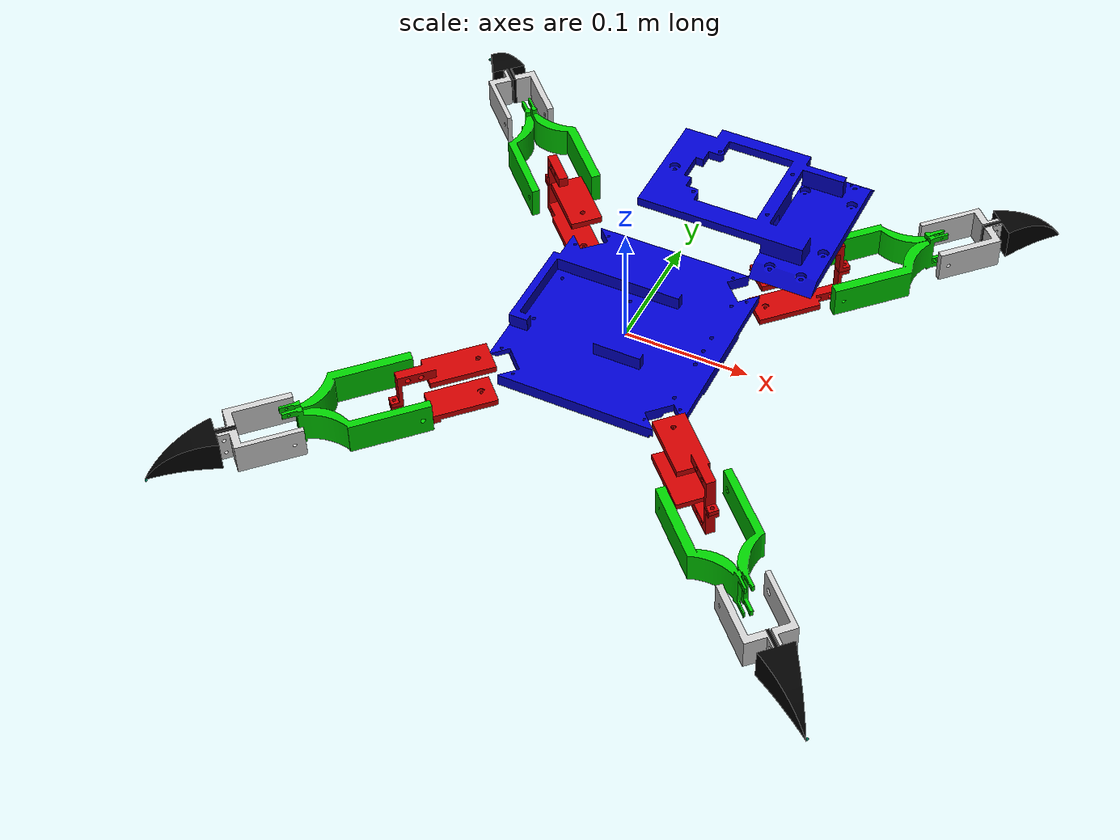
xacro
<?xml version="1.0"?>
<robot xmlns:xacro="http://www.ros.org/wiki/xacro" name="spider">
  <!--  Arguments  -->
  <xacro:arg name="use_mock_hardware" default="false"/>

  <!--  Include Xacro files  -->
	<xacro:include filename="$(find spider_capstone_description)/ros2_control/spider.ros2_control.xacro"/>
  <xacro:spider_ros2_control use_mock_hardware="$(arg use_mock_hardware)"/>

	<!--  Colors  -->
	<material name="blue">
		<color rgba="0 0 0.8 1"/>
	</material>
	<material name="green">
		<color rgba="0 0.8 0 1"/>
	</material>
	<material name="red">
		<color rgba="0.8 0 0 1"/>
	</material>
	<material name="white">
		<color rgba="0.8 0.8 0.8 1"/>
	</material>
        <material name="black">
          <color rgba="0 0 0 1"/>
        </material>

	<!--  Macro Properties  -->
	<xacro:property name="mesh_dir" value="package://spider_capstone_description/meshes/V1"/>
	<xacro:property name="mesh_scale" value="0.001"/>
	<xacro:property name="scale3" value="${mesh_scale} ${mesh_scale} ${mesh_scale}"/>

        <xacro:macro name="MG90S" params="prefix">
          <link name="${prefix}_MG90S">
            <visual>
              <geometry>
                <mesh filename="${mesh_dir}/MG90SSeat.stl"/>
              </geometry>
            </visual>
          </link>
        </xacro:macro>
        <xacro:macro name="MG996R" params="prefix">
          <link name="${prefix}_MG996R">
            <visual>
              <geometry>
                <mesh filename="${mesh_dir}/MG996RSeat.stl"/>
              </geometry>
            </visual>
          </link>
        </xacro:macro>

	<!--  Define base  -->
	<link name="base_link"/>

	<joint name="base_link_to_BaseLowerPlate" type="fixed">
		<parent link="base_link"/>
		<child link="BaseLowerPlate"/>
		<origin xyz="0 0 0" rpy="0 0 0"/>
	</joint>

	<link name="BaseLowerPlate">
		<visual>
			<geometry>
				<mesh filename="${mesh_dir}/BaseLowerPlate.stl" scale="${scale3}"/>
			</geometry>
			<material name="blue"/>
			<origin xyz="-0.0795 0.0877 0.021" rpy="${pi} 0 0"/>
		</visual>
	</link>

	<joint name="BaseLowerPlate_to_BaseUpperPlate" type="fixed">
		<parent link="BaseLowerPlate"/>
		<child link="BaseUpperPlate"/>
		<origin xyz="0 0 0.1" rpy="0 0 0"/>
	</joint>

	<link name="BaseUpperPlate">
		<visual>
			<geometry>
				<mesh filename="${mesh_dir}/BaseUpperPlate.stl" scale="${scale3}"/>
			</geometry>
			<material name="blue"/>
			<origin xyz="0 0 0" rpy="0 0 0"/>
		</visual>
	</link>

        <!--  Define leg macro  -->
        <xacro:macro name="leg" params="prefix *sh_orig">
          <joint name="${prefix}_hip" type="revolute">
            <!--  BaseLowerPlate_to_Link1Upper  -->
            <parent link="BaseLowerPlate"/>
            <child link="${prefix}_Link1Upper"/>
            <xacro:insert_block name="sh_orig"/>
            <limit upper="${pi/2}" lower="${-pi/2}" effort="1000" velocity="0.5"/>
            <axis xyz="0 0 1"/>
          </joint>

          <link name="${prefix}_Link1Upper">
                  <visual>
                          <geometry>
                                  <mesh filename="${mesh_dir}/Link1Upper.stl" scale="${scale3}"/>
                          </geometry>
                          <material name="red"/>
                          <origin xyz="-0.0106 0.0127 0" rpy="0 0 ${-pi/2}"/>
                  </visual>
          </link>

          <joint name="${prefix}_Link1Upper_to_Link1Lower" type="fixed">
            <parent link="${prefix}_Link1Upper"/>
            <child link="${prefix}_Link1Lower"/>
            <origin xyz="0 0 0" rpy="0 0 0"/>
          </joint>

          <link name="${prefix}_Link1Lower">
                  <visual>
                          <geometry>
                                  <mesh filename="${mesh_dir}/Link1Lower.stl" scale="${scale3}"/>
                          </geometry>
                          <material name="red"/>
                          <origin xyz="-0.0106 0.0127 -0.02794" rpy="0 0 ${-pi/2}"/>
                  </visual>
          </link>

          <joint name="${prefix}_knee" type="revolute">
            <!--  Link1Lower_to_Link2Left  -->
            <parent link="${prefix}_Link1Lower"/>
            <child link="${prefix}_Link2Left"/>
            <origin xyz="0.05123 0 0" rpy="0 0 0"/>
            <axis xyz="0 1 0"/>
            <limit upper="${pi/2}" lower="${-pi/2}" effort="1000" velocity="0.5"/>
          </joint>

          <link name="${prefix}_Link2Left">
                  <visual>
                          <geometry>
                                  <mesh filename="${mesh_dir}/Link2Left.stl" scale="${scale3}"/>
                          </geometry>
                          <material name="green"/>
                          <origin xyz="-0.0331 0.0283 -0.016" rpy="0 0 ${-pi/2}"/>
                  </visual>
          </link>

          <joint name="${prefix}_Link2Left_to_Link2Right" type="fixed">
            <parent link="${prefix}_Link2Left"/>
            <child link="${prefix}_Link2Right"/>
            <origin xyz="0 0 0" rpy="0 0 0"/>
          </joint>

          <link name="${prefix}_Link2Right">
                  <visual>
                          <geometry>
                                  <mesh filename="${mesh_dir}/Link2Right.stl" scale="${scale3}"/>
                          </geometry>
                          <material name="green"/>
                          <origin xyz="-0.03294 0 -0.015" rpy="0 0 ${-pi/2}"/>
                  </visual>
          </link>

          <joint name="${prefix}_ankle" type="revolute">
            <!--  Link2Right_to_Link3Left  -->
            <parent link="${prefix}_Link2Right"/>
            <child link="${prefix}_Link3Left"/>
            <origin xyz="0.0933 0.00127 0" rpy="0 0 0"/>
            <axis xyz="0 1 0"/>
            <limit upper="${pi/2}" lower="${-pi/2}" effort="1000" velocity="0.5"/>
          </joint>

          <link name="${prefix}_Link3Left">
                  <visual>
                          <geometry>
                                  <mesh filename="${mesh_dir}/Link3Left.stl" scale="${scale3}"/>
                          </geometry>
                          <material name="white"/>
                          <origin xyz="-0.126 0.0181 -0.013" rpy="0 0 ${-pi/2}"/>
                  </visual>
          </link>

          <joint name="${prefix}_Link3Left_to_Link3Right" type="fixed">
            <parent link="${prefix}_Link3Left"/>
            <child link="${prefix}_Link3Right"/>
            <origin xyz="0 -0.00254 0" rpy="0 0 0"/>
          </joint>

          <link name="${prefix}_Link3Right">
                  <visual>
                          <geometry>
                                  <mesh filename="${mesh_dir}/Link3Right.stl" scale="${scale3}"/>
                          </geometry>
                          <material name="white"/>
                          <origin xyz="-0.126 0 -0.013" rpy="0 0 ${-pi/2}"/>
                  </visual>
          </link>

          <joint name="${prefix}_Link3Right_to_EndEffector" type="fixed">
            <parent link="${prefix}_Link3Right"/>
            <child link="${prefix}_EndEffector"/>
            <origin xyz="0.048 0.00127 0.0063" rpy="0 0 0"/>
          </joint>

          <link name="${prefix}_EndEffector">
                  <visual>
                          <geometry>
                                  <mesh filename="${mesh_dir}/EndEffector.stl" scale="${scale3}"/>
                          </geometry>
                          <material name="black"/>
                          <origin xyz="-0.03638 0.01884 0.0066" rpy="${pi} 0 0"/>
                  </visual>
          </link>

          <joint name="${prefix}_EndEffector_to_end_effector" type="fixed">
            <parent link="${prefix}_EndEffector"/>
            <child link="${prefix}_end_effector"/>
            <origin xyz="0.06 0 -0.025" rpy="0 0 0"/>
          </joint>

          <link name="${prefix}_end_effector">
            <visual>
              <geometry>
                <sphere radius="0.001"/>
              </geometry>
            </visual>
          </link>
        </xacro:macro>

  <!--  Call macro to create each leg -->
  <xacro:leg prefix="fr">
    <origin xyz="0.0795 -0.0877 0" rpy="0 0 ${-pi/4}"/>
  </xacro:leg>
  <xacro:leg prefix="fl">
    <origin xyz="0.0795 0.0877 0" rpy="0 0 ${pi/4}"/>
  </xacro:leg>
  <xacro:leg prefix="bl">
    <origin xyz="-0.0795 0.0877 0" rpy="0 0 ${3*pi/4}"/>
  </xacro:leg>
  <xacro:leg prefix="br">
    <origin xyz="-0.0795 -0.0877 0" rpy="0 0 ${-3*pi/4}"/>
  </xacro:leg>

</robot>
